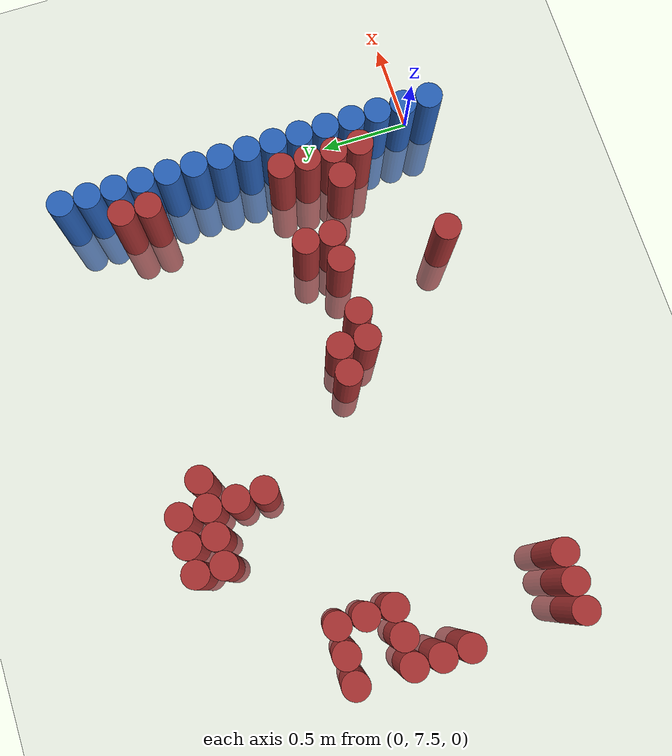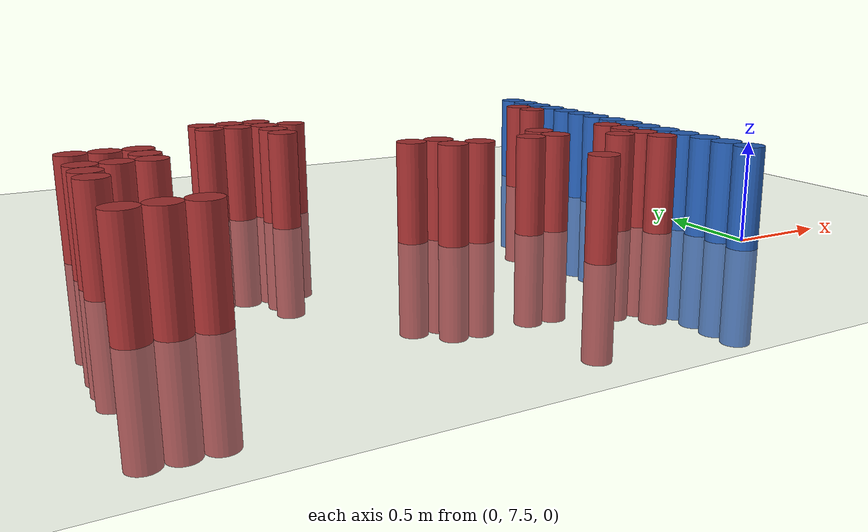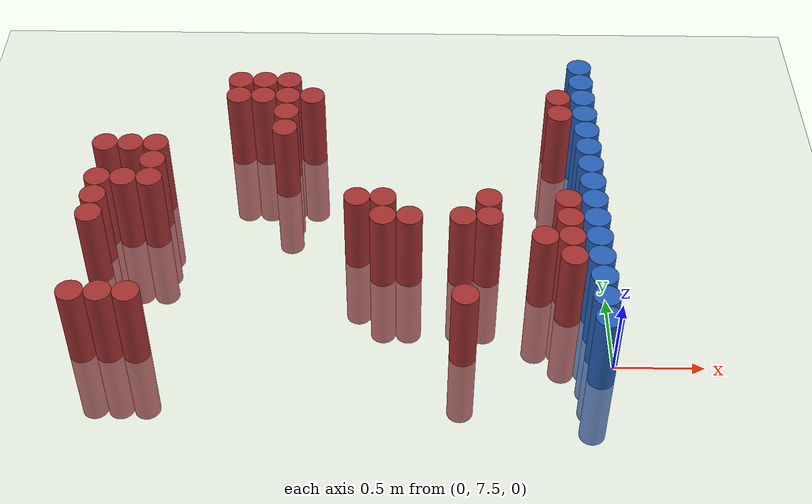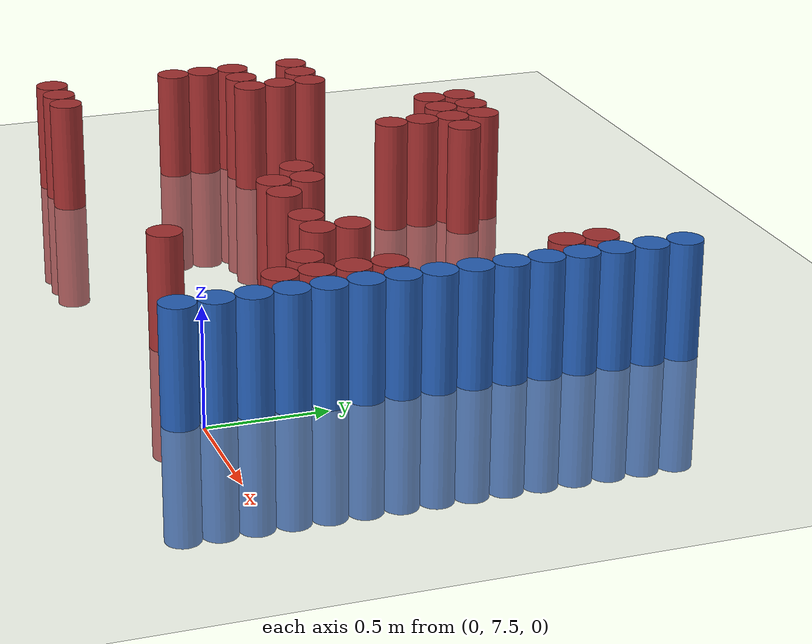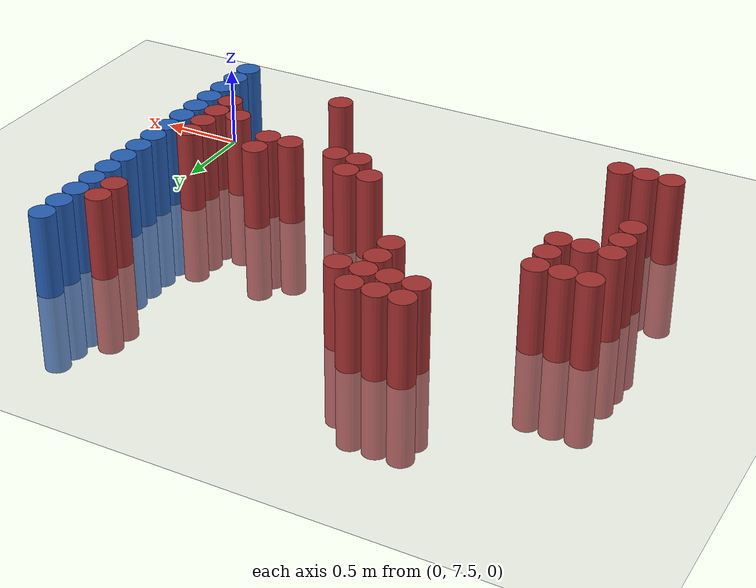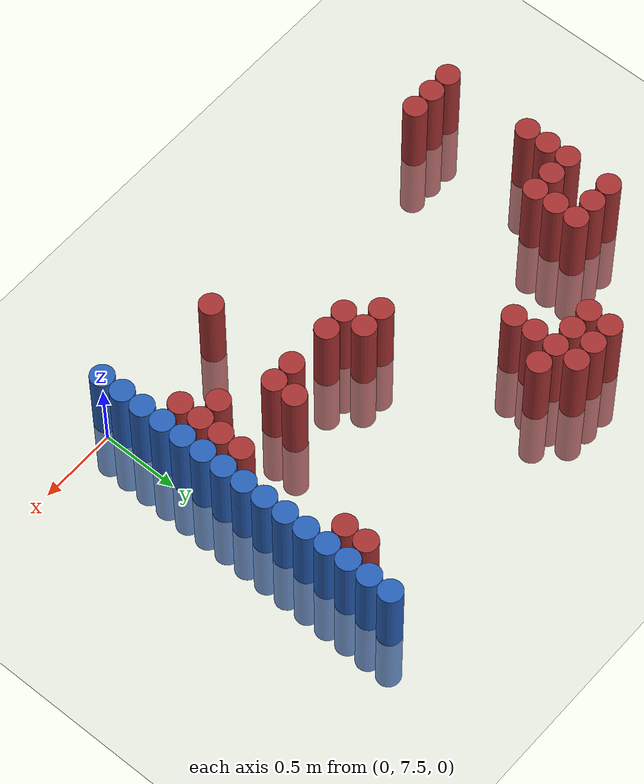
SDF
<sdf version="1.6">
 <world name="default">
  <model name="ground_plane">
   <static>1</static>
   <link name="link">
    <collision name="collision">
     <geometry><plane><normal>0 0 1</normal><size>100 100</size></plane></geometry>
     <surface><friction><ode><mu>100</mu><mu2>50</mu2></ode></friction></surface>
    </collision>
    <visual name="visual">
     <cast_shadows>0</cast_shadows>
     <geometry><plane><normal>0 0 1</normal><size>100 100</size></plane></geometry>
     <material>
      <script><uri>file://media/materials/scripts/gazebo.material</uri><name>Gazebo/Grey</name></script>
     </material>
    </visual>
   </link>
  </model>
  <model name="unit_cylinder_149">
   <static>1</static>
   <pose>-2.925000 7.575000 0.000000 0.000000 0.000000 0.000000</pose>
   <link name="link">
    <inertial>
     <mass>1</mass>
     <inertia><ixx>0.145833</ixx><ixy>0</ixy><ixz>0</ixz><iyy>0.145833</iyy><iyz>0</iyz><izz>0.125</izz></inertia>
    </inertial>
    <collision name="collision">
     <geometry><cylinder><radius>0.075000</radius><length>1</length></cylinder></geometry>
    </collision>
    <visual name="visual">
     <geometry><cylinder><radius>0.075000</radius><length>1</length></cylinder></geometry>
     <material>
      <ambient>0.648000 0.192000 0.192000 1</ambient>
      <diffuse>0.648000 0.192000 0.192000 1</diffuse>
     </material>
     <material>
      <script><name>Gazebo/Grey</name><uri>file://media/materials/scripts/gazebo.material</uri></script>
     </material>
    </visual>
   </link>
  </model>
  <model name="unit_cylinder_150">
   <static>1</static>
   <pose>-2.925000 8.175000 0.000000 0.000000 0.000000 0.000000</pose>
   <link name="link">
    <inertial>
     <mass>1</mass>
     <inertia><ixx>0.145833</ixx><ixy>0</ixy><ixz>0</ixz><iyy>0.145833</iyy><iyz>0</iyz><izz>0.125</izz></inertia>
    </inertial>
    <collision name="collision">
     <geometry><cylinder><radius>0.075000</radius><length>1</length></cylinder></geometry>
    </collision>
    <visual name="visual">
     <geometry><cylinder><radius>0.075000</radius><length>1</length></cylinder></geometry>
     <material>
      <ambient>0.648000 0.192000 0.192000 1</ambient>
      <diffuse>0.648000 0.192000 0.192000 1</diffuse>
     </material>
     <material>
      <script><name>Gazebo/Grey</name><uri>file://media/materials/scripts/gazebo.material</uri></script>
     </material>
    </visual>
   </link>
  </model>
  <model name="unit_cylinder_151">
   <static>1</static>
   <pose>-2.925000 8.325000 0.000000 0.000000 0.000000 0.000000</pose>
   <link name="link">
    <inertial>
     <mass>1</mass>
     <inertia><ixx>0.145833</ixx><ixy>0</ixy><ixz>0</ixz><iyy>0.145833</iyy><iyz>0</iyz><izz>0.125</izz></inertia>
    </inertial>
    <collision name="collision">
     <geometry><cylinder><radius>0.075000</radius><length>1</length></cylinder></geometry>
    </collision>
    <visual name="visual">
     <geometry><cylinder><radius>0.075000</radius><length>1</length></cylinder></geometry>
     <material>
      <ambient>0.648000 0.192000 0.192000 1</ambient>
      <diffuse>0.648000 0.192000 0.192000 1</diffuse>
     </material>
     <material>
      <script><name>Gazebo/Grey</name><uri>file://media/materials/scripts/gazebo.material</uri></script>
     </material>
    </visual>
   </link>
  </model>
  <model name="unit_cylinder_152">
   <static>1</static>
   <pose>-2.925000 8.475000 0.000000 0.000000 0.000000 0.000000</pose>
   <link name="link">
    <inertial>
     <mass>1</mass>
     <inertia><ixx>0.145833</ixx><ixy>0</ixy><ixz>0</ixz><iyy>0.145833</iyy><iyz>0</iyz><izz>0.125</izz></inertia>
    </inertial>
    <collision name="collision">
     <geometry><cylinder><radius>0.075000</radius><length>1</length></cylinder></geometry>
    </collision>
    <visual name="visual">
     <geometry><cylinder><radius>0.075000</radius><length>1</length></cylinder></geometry>
     <material>
      <ambient>0.648000 0.192000 0.192000 1</ambient>
      <diffuse>0.648000 0.192000 0.192000 1</diffuse>
     </material>
     <material>
      <script><name>Gazebo/Grey</name><uri>file://media/materials/scripts/gazebo.material</uri></script>
     </material>
    </visual>
   </link>
  </model>
  <model name="unit_cylinder_153">
   <static>1</static>
   <pose>-2.925000 8.775000 0.000000 0.000000 0.000000 0.000000</pose>
   <link name="link">
    <inertial>
     <mass>1</mass>
     <inertia><ixx>0.145833</ixx><ixy>0</ixy><ixz>0</ixz><iyy>0.145833</iyy><iyz>0</iyz><izz>0.125</izz></inertia>
    </inertial>
    <collision name="collision">
     <geometry><cylinder><radius>0.075000</radius><length>1</length></cylinder></geometry>
    </collision>
    <visual name="visual">
     <geometry><cylinder><radius>0.075000</radius><length>1</length></cylinder></geometry>
     <material>
      <ambient>0.648000 0.192000 0.192000 1</ambient>
      <diffuse>0.648000 0.192000 0.192000 1</diffuse>
     </material>
     <material>
      <script><name>Gazebo/Grey</name><uri>file://media/materials/scripts/gazebo.material</uri></script>
     </material>
    </visual>
   </link>
  </model>
  <model name="unit_cylinder_156">
   <static>1</static>
   <pose>-2.775000 7.575000 0.000000 0.000000 0.000000 0.000000</pose>
   <link name="link">
    <inertial>
     <mass>1</mass>
     <inertia><ixx>0.145833</ixx><ixy>0</ixy><ixz>0</ixz><iyy>0.145833</iyy><iyz>0</iyz><izz>0.125</izz></inertia>
    </inertial>
    <collision name="collision">
     <geometry><cylinder><radius>0.075000</radius><length>1</length></cylinder></geometry>
    </collision>
    <visual name="visual">
     <geometry><cylinder><radius>0.075000</radius><length>1</length></cylinder></geometry>
     <material>
      <ambient>0.648000 0.192000 0.192000 1</ambient>
      <diffuse>0.648000 0.192000 0.192000 1</diffuse>
     </material>
     <material>
      <script><name>Gazebo/Grey</name><uri>file://media/materials/scripts/gazebo.material</uri></script>
     </material>
    </visual>
   </link>
  </model>
  <model name="unit_cylinder_157">
   <static>1</static>
   <pose>-2.775000 8.475000 0.000000 0.000000 0.000000 0.000000</pose>
   <link name="link">
    <inertial>
     <mass>1</mass>
     <inertia><ixx>0.145833</ixx><ixy>0</ixy><ixz>0</ixz><iyy>0.145833</iyy><iyz>0</iyz><izz>0.125</izz></inertia>
    </inertial>
    <collision name="collision">
     <geometry><cylinder><radius>0.075000</radius><length>1</length></cylinder></geometry>
    </collision>
    <visual name="visual">
     <geometry><cylinder><radius>0.075000</radius><length>1</length></cylinder></geometry>
     <material>
      <ambient>0.648000 0.192000 0.192000 1</ambient>
      <diffuse>0.648000 0.192000 0.192000 1</diffuse>
     </material>
     <material>
      <script><name>Gazebo/Grey</name><uri>file://media/materials/scripts/gazebo.material</uri></script>
     </material>
    </visual>
   </link>
  </model>
  <model name="unit_cylinder_158">
   <static>1</static>
   <pose>-2.775000 8.775000 0.000000 0.000000 0.000000 0.000000</pose>
   <link name="link">
    <inertial>
     <mass>1</mass>
     <inertia><ixx>0.145833</ixx><ixy>0</ixy><ixz>0</ixz><iyy>0.145833</iyy><iyz>0</iyz><izz>0.125</izz></inertia>
    </inertial>
    <collision name="collision">
     <geometry><cylinder><radius>0.075000</radius><length>1</length></cylinder></geometry>
    </collision>
    <visual name="visual">
     <geometry><cylinder><radius>0.075000</radius><length>1</length></cylinder></geometry>
     <material>
      <ambient>0.648000 0.192000 0.192000 1</ambient>
      <diffuse>0.648000 0.192000 0.192000 1</diffuse>
     </material>
     <material>
      <script><name>Gazebo/Grey</name><uri>file://media/materials/scripts/gazebo.material</uri></script>
     </material>
    </visual>
   </link>
  </model>
  <model name="unit_cylinder_160">
   <static>1</static>
   <pose>-2.625000 7.575000 0.000000 0.000000 0.000000 0.000000</pose>
   <link name="link">
    <inertial>
     <mass>1</mass>
     <inertia><ixx>0.145833</ixx><ixy>0</ixy><ixz>0</ixz><iyy>0.145833</iyy><iyz>0</iyz><izz>0.125</izz></inertia>
    </inertial>
    <collision name="collision">
     <geometry><cylinder><radius>0.075000</radius><length>1</length></cylinder></geometry>
    </collision>
    <visual name="visual">
     <geometry><cylinder><radius>0.075000</radius><length>1</length></cylinder></geometry>
     <material>
      <ambient>0.648000 0.192000 0.192000 1</ambient>
      <diffuse>0.648000 0.192000 0.192000 1</diffuse>
     </material>
     <material>
      <script><name>Gazebo/Grey</name><uri>file://media/materials/scripts/gazebo.material</uri></script>
     </material>
    </visual>
   </link>
  </model>
  <model name="unit_cylinder_161">
   <static>1</static>
   <pose>-2.625000 8.475000 0.000000 0.000000 0.000000 0.000000</pose>
   <link name="link">
    <inertial>
     <mass>1</mass>
     <inertia><ixx>0.145833</ixx><ixy>0</ixy><ixz>0</ixz><iyy>0.145833</iyy><iyz>0</iyz><izz>0.125</izz></inertia>
    </inertial>
    <collision name="collision">
     <geometry><cylinder><radius>0.075000</radius><length>1</length></cylinder></geometry>
    </collision>
    <visual name="visual">
     <geometry><cylinder><radius>0.075000</radius><length>1</length></cylinder></geometry>
     <material>
      <ambient>0.648000 0.192000 0.192000 1</ambient>
      <diffuse>0.648000 0.192000 0.192000 1</diffuse>
     </material>
     <material>
      <script><name>Gazebo/Grey</name><uri>file://media/materials/scripts/gazebo.material</uri></script>
     </material>
    </visual>
   </link>
  </model>
  <model name="unit_cylinder_162">
   <static>1</static>
   <pose>-2.625000 8.625000 0.000000 0.000000 0.000000 0.000000</pose>
   <link name="link">
    <inertial>
     <mass>1</mass>
     <inertia><ixx>0.145833</ixx><ixy>0</ixy><ixz>0</ixz><iyy>0.145833</iyy><iyz>0</iyz><izz>0.125</izz></inertia>
    </inertial>
    <collision name="collision">
     <geometry><cylinder><radius>0.075000</radius><length>1</length></cylinder></geometry>
    </collision>
    <visual name="visual">
     <geometry><cylinder><radius>0.075000</radius><length>1</length></cylinder></geometry>
     <material>
      <ambient>0.648000 0.192000 0.192000 1</ambient>
      <diffuse>0.648000 0.192000 0.192000 1</diffuse>
     </material>
     <material>
      <script><name>Gazebo/Grey</name><uri>file://media/materials/scripts/gazebo.material</uri></script>
     </material>
    </visual>
   </link>
  </model>
  <model name="unit_cylinder_163">
   <static>1</static>
   <pose>-2.625000 8.775000 0.000000 0.000000 0.000000 0.000000</pose>
   <link name="link">
    <inertial>
     <mass>1</mass>
     <inertia><ixx>0.145833</ixx><ixy>0</ixy><ixz>0</ixz><iyy>0.145833</iyy><iyz>0</iyz><izz>0.125</izz></inertia>
    </inertial>
    <collision name="collision">
     <geometry><cylinder><radius>0.075000</radius><length>1</length></cylinder></geometry>
    </collision>
    <visual name="visual">
     <geometry><cylinder><radius>0.075000</radius><length>1</length></cylinder></geometry>
     <material>
      <ambient>0.648000 0.192000 0.192000 1</ambient>
      <diffuse>0.648000 0.192000 0.192000 1</diffuse>
     </material>
     <material>
      <script><name>Gazebo/Grey</name><uri>file://media/materials/scripts/gazebo.material</uri></script>
     </material>
    </visual>
   </link>
  </model>
  <model name="unit_cylinder_166">
   <static>1</static>
   <pose>-2.175000 9.225000 0.000000 0.000000 0.000000 0.000000</pose>
   <link name="link">
    <inertial>
     <mass>1</mass>
     <inertia><ixx>0.145833</ixx><ixy>0</ixy><ixz>0</ixz><iyy>0.145833</iyy><iyz>0</iyz><izz>0.125</izz></inertia>
    </inertial>
    <collision name="collision">
     <geometry><cylinder><radius>0.075000</radius><length>1</length></cylinder></geometry>
    </collision>
    <visual name="visual">
     <geometry><cylinder><radius>0.075000</radius><length>1</length></cylinder></geometry>
     <material>
      <ambient>0.648000 0.192000 0.192000 1</ambient>
      <diffuse>0.648000 0.192000 0.192000 1</diffuse>
     </material>
     <material>
      <script><name>Gazebo/Grey</name><uri>file://media/materials/scripts/gazebo.material</uri></script>
     </material>
    </visual>
   </link>
  </model>
  <model name="unit_cylinder_167">
   <static>1</static>
   <pose>-2.175000 9.375000 0.000000 0.000000 0.000000 0.000000</pose>
   <link name="link">
    <inertial>
     <mass>1</mass>
     <inertia><ixx>0.145833</ixx><ixy>0</ixy><ixz>0</ixz><iyy>0.145833</iyy><iyz>0</iyz><izz>0.125</izz></inertia>
    </inertial>
    <collision name="collision">
     <geometry><cylinder><radius>0.075000</radius><length>1</length></cylinder></geometry>
    </collision>
    <visual name="visual">
     <geometry><cylinder><radius>0.075000</radius><length>1</length></cylinder></geometry>
     <material>
      <ambient>0.648000 0.192000 0.192000 1</ambient>
      <diffuse>0.648000 0.192000 0.192000 1</diffuse>
     </material>
     <material>
      <script><name>Gazebo/Grey</name><uri>file://media/materials/scripts/gazebo.material</uri></script>
     </material>
    </visual>
   </link>
  </model>
  <model name="unit_cylinder_169">
   <static>1</static>
   <pose>-2.025000 9.225000 0.000000 0.000000 0.000000 0.000000</pose>
   <link name="link">
    <inertial>
     <mass>1</mass>
     <inertia><ixx>0.145833</ixx><ixy>0</ixy><ixz>0</ixz><iyy>0.145833</iyy><iyz>0</iyz><izz>0.125</izz></inertia>
    </inertial>
    <collision name="collision">
     <geometry><cylinder><radius>0.075000</radius><length>1</length></cylinder></geometry>
    </collision>
    <visual name="visual">
     <geometry><cylinder><radius>0.075000</radius><length>1</length></cylinder></geometry>
     <material>
      <ambient>0.648000 0.192000 0.192000 1</ambient>
      <diffuse>0.648000 0.192000 0.192000 1</diffuse>
     </material>
     <material>
      <script><name>Gazebo/Grey</name><uri>file://media/materials/scripts/gazebo.material</uri></script>
     </material>
    </visual>
   </link>
  </model>
  <model name="unit_cylinder_170">
   <static>1</static>
   <pose>-2.025000 9.375000 0.000000 0.000000 0.000000 0.000000</pose>
   <link name="link">
    <inertial>
     <mass>1</mass>
     <inertia><ixx>0.145833</ixx><ixy>0</ixy><ixz>0</ixz><iyy>0.145833</iyy><iyz>0</iyz><izz>0.125</izz></inertia>
    </inertial>
    <collision name="collision">
     <geometry><cylinder><radius>0.075000</radius><length>1</length></cylinder></geometry>
    </collision>
    <visual name="visual">
     <geometry><cylinder><radius>0.075000</radius><length>1</length></cylinder></geometry>
     <material>
      <ambient>0.648000 0.192000 0.192000 1</ambient>
      <diffuse>0.648000 0.192000 0.192000 1</diffuse>
     </material>
     <material>
      <script><name>Gazebo/Grey</name><uri>file://media/materials/scripts/gazebo.material</uri></script>
     </material>
    </visual>
   </link>
  </model>
  <model name="unit_cylinder_172">
   <static>1</static>
   <pose>-1.875000 8.925000 0.000000 0.000000 0.000000 0.000000</pose>
   <link name="link">
    <inertial>
     <mass>1</mass>
     <inertia><ixx>0.145833</ixx><ixy>0</ixy><ixz>0</ixz><iyy>0.145833</iyy><iyz>0</iyz><izz>0.125</izz></inertia>
    </inertial>
    <collision name="collision">
     <geometry><cylinder><radius>0.075000</radius><length>1</length></cylinder></geometry>
    </collision>
    <visual name="visual">
     <geometry><cylinder><radius>0.075000</radius><length>1</length></cylinder></geometry>
     <material>
      <ambient>0.648000 0.192000 0.192000 1</ambient>
      <diffuse>0.648000 0.192000 0.192000 1</diffuse>
     </material>
     <material>
      <script><name>Gazebo/Grey</name><uri>file://media/materials/scripts/gazebo.material</uri></script>
     </material>
    </visual>
   </link>
  </model>
  <model name="unit_cylinder_173">
   <static>1</static>
   <pose>-1.875000 9.075000 0.000000 0.000000 0.000000 0.000000</pose>
   <link name="link">
    <inertial>
     <mass>1</mass>
     <inertia><ixx>0.145833</ixx><ixy>0</ixy><ixz>0</ixz><iyy>0.145833</iyy><iyz>0</iyz><izz>0.125</izz></inertia>
    </inertial>
    <collision name="collision">
     <geometry><cylinder><radius>0.075000</radius><length>1</length></cylinder></geometry>
    </collision>
    <visual name="visual">
     <geometry><cylinder><radius>0.075000</radius><length>1</length></cylinder></geometry>
     <material>
      <ambient>0.648000 0.192000 0.192000 1</ambient>
      <diffuse>0.648000 0.192000 0.192000 1</diffuse>
     </material>
     <material>
      <script><name>Gazebo/Grey</name><uri>file://media/materials/scripts/gazebo.material</uri></script>
     </material>
    </visual>
   </link>
  </model>
  <model name="unit_cylinder_174">
   <static>1</static>
   <pose>-1.875000 9.225000 0.000000 0.000000 0.000000 0.000000</pose>
   <link name="link">
    <inertial>
     <mass>1</mass>
     <inertia><ixx>0.145833</ixx><ixy>0</ixy><ixz>0</ixz><iyy>0.145833</iyy><iyz>0</iyz><izz>0.125</izz></inertia>
    </inertial>
    <collision name="collision">
     <geometry><cylinder><radius>0.075000</radius><length>1</length></cylinder></geometry>
    </collision>
    <visual name="visual">
     <geometry><cylinder><radius>0.075000</radius><length>1</length></cylinder></geometry>
     <material>
      <ambient>0.648000 0.192000 0.192000 1</ambient>
      <diffuse>0.648000 0.192000 0.192000 1</diffuse>
     </material>
     <material>
      <script><name>Gazebo/Grey</name><uri>file://media/materials/scripts/gazebo.material</uri></script>
     </material>
    </visual>
   </link>
  </model>
  <model name="unit_cylinder_175">
   <static>1</static>
   <pose>-1.875000 9.375000 0.000000 0.000000 0.000000 0.000000</pose>
   <link name="link">
    <inertial>
     <mass>1</mass>
     <inertia><ixx>0.145833</ixx><ixy>0</ixy><ixz>0</ixz><iyy>0.145833</iyy><iyz>0</iyz><izz>0.125</izz></inertia>
    </inertial>
    <collision name="collision">
     <geometry><cylinder><radius>0.075000</radius><length>1</length></cylinder></geometry>
    </collision>
    <visual name="visual">
     <geometry><cylinder><radius>0.075000</radius><length>1</length></cylinder></geometry>
     <material>
      <ambient>0.648000 0.192000 0.192000 1</ambient>
      <diffuse>0.648000 0.192000 0.192000 1</diffuse>
     </material>
     <material>
      <script><name>Gazebo/Grey</name><uri>file://media/materials/scripts/gazebo.material</uri></script>
     </material>
    </visual>
   </link>
  </model>
  <model name="unit_cylinder_178">
   <static>1</static>
   <pose>-1.725000 9.225000 0.000000 0.000000 0.000000 0.000000</pose>
   <link name="link">
    <inertial>
     <mass>1</mass>
     <inertia><ixx>0.145833</ixx><ixy>0</ixy><ixz>0</ixz><iyy>0.145833</iyy><iyz>0</iyz><izz>0.125</izz></inertia>
    </inertial>
    <collision name="collision">
     <geometry><cylinder><radius>0.075000</radius><length>1</length></cylinder></geometry>
    </collision>
    <visual name="visual">
     <geometry><cylinder><radius>0.075000</radius><length>1</length></cylinder></geometry>
     <material>
      <ambient>0.648000 0.192000 0.192000 1</ambient>
      <diffuse>0.648000 0.192000 0.192000 1</diffuse>
     </material>
     <material>
      <script><name>Gazebo/Grey</name><uri>file://media/materials/scripts/gazebo.material</uri></script>
     </material>
    </visual>
   </link>
  </model>
  <model name="unit_cylinder_179">
   <static>1</static>
   <pose>-1.425000 8.325000 0.000000 0.000000 0.000000 0.000000</pose>
   <link name="link">
    <inertial>
     <mass>1</mass>
     <inertia><ixx>0.145833</ixx><ixy>0</ixy><ixz>0</ixz><iyy>0.145833</iyy><iyz>0</iyz><izz>0.125</izz></inertia>
    </inertial>
    <collision name="collision">
     <geometry><cylinder><radius>0.075000</radius><length>1</length></cylinder></geometry>
    </collision>
    <visual name="visual">
     <geometry><cylinder><radius>0.075000</radius><length>1</length></cylinder></geometry>
     <material>
      <ambient>0.648000 0.192000 0.192000 1</ambient>
      <diffuse>0.648000 0.192000 0.192000 1</diffuse>
     </material>
     <material>
      <script><name>Gazebo/Grey</name><uri>file://media/materials/scripts/gazebo.material</uri></script>
     </material>
    </visual>
   </link>
  </model>
  <model name="unit_cylinder_180">
   <static>1</static>
   <pose>-1.275000 8.175000 0.000000 0.000000 0.000000 0.000000</pose>
   <link name="link">
    <inertial>
     <mass>1</mass>
     <inertia><ixx>0.145833</ixx><ixy>0</ixy><ixz>0</ixz><iyy>0.145833</iyy><iyz>0</iyz><izz>0.125</izz></inertia>
    </inertial>
    <collision name="collision">
     <geometry><cylinder><radius>0.075000</radius><length>1</length></cylinder></geometry>
    </collision>
    <visual name="visual">
     <geometry><cylinder><radius>0.075000</radius><length>1</length></cylinder></geometry>
     <material>
      <ambient>0.648000 0.192000 0.192000 1</ambient>
      <diffuse>0.648000 0.192000 0.192000 1</diffuse>
     </material>
     <material>
      <script><name>Gazebo/Grey</name><uri>file://media/materials/scripts/gazebo.material</uri></script>
     </material>
    </visual>
   </link>
  </model>
  <model name="unit_cylinder_181">
   <static>1</static>
   <pose>-1.275000 8.325000 0.000000 0.000000 0.000000 0.000000</pose>
   <link name="link">
    <inertial>
     <mass>1</mass>
     <inertia><ixx>0.145833</ixx><ixy>0</ixy><ixz>0</ixz><iyy>0.145833</iyy><iyz>0</iyz><izz>0.125</izz></inertia>
    </inertial>
    <collision name="collision">
     <geometry><cylinder><radius>0.075000</radius><length>1</length></cylinder></geometry>
    </collision>
    <visual name="visual">
     <geometry><cylinder><radius>0.075000</radius><length>1</length></cylinder></geometry>
     <material>
      <ambient>0.648000 0.192000 0.192000 1</ambient>
      <diffuse>0.648000 0.192000 0.192000 1</diffuse>
     </material>
     <material>
      <script><name>Gazebo/Grey</name><uri>file://media/materials/scripts/gazebo.material</uri></script>
     </material>
    </visual>
   </link>
  </model>
  <model name="unit_cylinder_182">
   <static>1</static>
   <pose>-1.125000 8.175000 0.000000 0.000000 0.000000 0.000000</pose>
   <link name="link">
    <inertial>
     <mass>1</mass>
     <inertia><ixx>0.145833</ixx><ixy>0</ixy><ixz>0</ixz><iyy>0.145833</iyy><iyz>0</iyz><izz>0.125</izz></inertia>
    </inertial>
    <collision name="collision">
     <geometry><cylinder><radius>0.075000</radius><length>1</length></cylinder></geometry>
    </collision>
    <visual name="visual">
     <geometry><cylinder><radius>0.075000</radius><length>1</length></cylinder></geometry>
     <material>
      <ambient>0.648000 0.192000 0.192000 1</ambient>
      <diffuse>0.648000 0.192000 0.192000 1</diffuse>
     </material>
     <material>
      <script><name>Gazebo/Grey</name><uri>file://media/materials/scripts/gazebo.material</uri></script>
     </material>
    </visual>
   </link>
  </model>
  <model name="unit_cylinder_186">
   <static>1</static>
   <pose>-0.825000 7.575000 0.000000 0.000000 0.000000 0.000000</pose>
   <link name="link">
    <inertial>
     <mass>1</mass>
     <inertia><ixx>0.145833</ixx><ixy>0</ixy><ixz>0</ixz><iyy>0.145833</iyy><iyz>0</iyz><izz>0.125</izz></inertia>
    </inertial>
    <collision name="collision">
     <geometry><cylinder><radius>0.075000</radius><length>1</length></cylinder></geometry>
    </collision>
    <visual name="visual">
     <geometry><cylinder><radius>0.075000</radius><length>1</length></cylinder></geometry>
     <material>
      <ambient>0.648000 0.192000 0.192000 1</ambient>
      <diffuse>0.648000 0.192000 0.192000 1</diffuse>
     </material>
     <material>
      <script><name>Gazebo/Grey</name><uri>file://media/materials/scripts/gazebo.material</uri></script>
     </material>
    </visual>
   </link>
  </model>
  <model name="unit_cylinder_187">
   <static>1</static>
   <pose>-0.825000 8.175000 0.000000 0.000000 0.000000 0.000000</pose>
   <link name="link">
    <inertial>
     <mass>1</mass>
     <inertia><ixx>0.145833</ixx><ixy>0</ixy><ixz>0</ixz><iyy>0.145833</iyy><iyz>0</iyz><izz>0.125</izz></inertia>
    </inertial>
    <collision name="collision">
     <geometry><cylinder><radius>0.075000</radius><length>1</length></cylinder></geometry>
    </collision>
    <visual name="visual">
     <geometry><cylinder><radius>0.075000</radius><length>1</length></cylinder></geometry>
     <material>
      <ambient>0.648000 0.192000 0.192000 1</ambient>
      <diffuse>0.648000 0.192000 0.192000 1</diffuse>
     </material>
     <material>
      <script><name>Gazebo/Grey</name><uri>file://media/materials/scripts/gazebo.material</uri></script>
     </material>
    </visual>
   </link>
  </model>
  <model name="unit_cylinder_192">
   <static>1</static>
   <pose>-0.675000 8.175000 0.000000 0.000000 0.000000 0.000000</pose>
   <link name="link">
    <inertial>
     <mass>1</mass>
     <inertia><ixx>0.145833</ixx><ixy>0</ixy><ixz>0</ixz><iyy>0.145833</iyy><iyz>0</iyz><izz>0.125</izz></inertia>
    </inertial>
    <collision name="collision">
     <geometry><cylinder><radius>0.075000</radius><length>1</length></cylinder></geometry>
    </collision>
    <visual name="visual">
     <geometry><cylinder><radius>0.075000</radius><length>1</length></cylinder></geometry>
     <material>
      <ambient>0.648000 0.192000 0.192000 1</ambient>
      <diffuse>0.648000 0.192000 0.192000 1</diffuse>
     </material>
     <material>
      <script><name>Gazebo/Grey</name><uri>file://media/materials/scripts/gazebo.material</uri></script>
     </material>
    </visual>
   </link>
  </model>
  <model name="unit_cylinder_193">
   <static>1</static>
   <pose>-0.675000 8.325000 0.000000 0.000000 0.000000 0.000000</pose>
   <link name="link">
    <inertial>
     <mass>1</mass>
     <inertia><ixx>0.145833</ixx><ixy>0</ixy><ixz>0</ixz><iyy>0.145833</iyy><iyz>0</iyz><izz>0.125</izz></inertia>
    </inertial>
    <collision name="collision">
     <geometry><cylinder><radius>0.075000</radius><length>1</length></cylinder></geometry>
    </collision>
    <visual name="visual">
     <geometry><cylinder><radius>0.075000</radius><length>1</length></cylinder></geometry>
     <material>
      <ambient>0.648000 0.192000 0.192000 1</ambient>
      <diffuse>0.648000 0.192000 0.192000 1</diffuse>
     </material>
     <material>
      <script><name>Gazebo/Grey</name><uri>file://media/materials/scripts/gazebo.material</uri></script>
     </material>
    </visual>
   </link>
  </model>
  <model name="unit_cylinder_207">
   <static>1</static>
   <pose>-0.375000 8.025000 0.000000 0.000000 0.000000 0.000000</pose>
   <link name="link">
    <inertial>
     <mass>1</mass>
     <inertia><ixx>0.145833</ixx><ixy>0</ixy><ixz>0</ixz><iyy>0.145833</iyy><iyz>0</iyz><izz>0.125</izz></inertia>
    </inertial>
    <collision name="collision">
     <geometry><cylinder><radius>0.075000</radius><length>1</length></cylinder></geometry>
    </collision>
    <visual name="visual">
     <geometry><cylinder><radius>0.075000</radius><length>1</length></cylinder></geometry>
     <material>
      <ambient>0.648000 0.192000 0.192000 1</ambient>
      <diffuse>0.648000 0.192000 0.192000 1</diffuse>
     </material>
     <material>
      <script><name>Gazebo/Grey</name><uri>file://media/materials/scripts/gazebo.material</uri></script>
     </material>
    </visual>
   </link>
  </model>
  <model name="unit_cylinder_218">
   <static>1</static>
   <pose>-0.225000 7.875000 0.000000 0.000000 0.000000 0.000000</pose>
   <link name="link">
    <inertial>
     <mass>1</mass>
     <inertia><ixx>0.145833</ixx><ixy>0</ixy><ixz>0</ixz><iyy>0.145833</iyy><iyz>0</iyz><izz>0.125</izz></inertia>
    </inertial>
    <collision name="collision">
     <geometry><cylinder><radius>0.075000</radius><length>1</length></cylinder></geometry>
    </collision>
    <visual name="visual">
     <geometry><cylinder><radius>0.075000</radius><length>1</length></cylinder></geometry>
     <material>
      <ambient>0.648000 0.192000 0.192000 1</ambient>
      <diffuse>0.648000 0.192000 0.192000 1</diffuse>
     </material>
     <material>
      <script><name>Gazebo/Grey</name><uri>file://media/materials/scripts/gazebo.material</uri></script>
     </material>
    </visual>
   </link>
  </model>
  <model name="unit_cylinder_219">
   <static>1</static>
   <pose>-0.225000 8.025000 0.000000 0.000000 0.000000 0.000000</pose>
   <link name="link">
    <inertial>
     <mass>1</mass>
     <inertia><ixx>0.145833</ixx><ixy>0</ixy><ixz>0</ixz><iyy>0.145833</iyy><iyz>0</iyz><izz>0.125</izz></inertia>
    </inertial>
    <collision name="collision">
     <geometry><cylinder><radius>0.075000</radius><length>1</length></cylinder></geometry>
    </collision>
    <visual name="visual">
     <geometry><cylinder><radius>0.075000</radius><length>1</length></cylinder></geometry>
     <material>
      <ambient>0.648000 0.192000 0.192000 1</ambient>
      <diffuse>0.648000 0.192000 0.192000 1</diffuse>
     </material>
     <material>
      <script><name>Gazebo/Grey</name><uri>file://media/materials/scripts/gazebo.material</uri></script>
     </material>
    </visual>
   </link>
  </model>
  <model name="unit_cylinder_220">
   <static>1</static>
   <pose>-0.225000 8.175000 0.000000 0.000000 0.000000 0.000000</pose>
   <link name="link">
    <inertial>
     <mass>1</mass>
     <inertia><ixx>0.145833</ixx><ixy>0</ixy><ixz>0</ixz><iyy>0.145833</iyy><iyz>0</iyz><izz>0.125</izz></inertia>
    </inertial>
    <collision name="collision">
     <geometry><cylinder><radius>0.075000</radius><length>1</length></cylinder></geometry>
    </collision>
    <visual name="visual">
     <geometry><cylinder><radius>0.075000</radius><length>1</length></cylinder></geometry>
     <material>
      <ambient>0.648000 0.192000 0.192000 1</ambient>
      <diffuse>0.648000 0.192000 0.192000 1</diffuse>
     </material>
     <material>
      <script><name>Gazebo/Grey</name><uri>file://media/materials/scripts/gazebo.material</uri></script>
     </material>
    </visual>
   </link>
  </model>
  <model name="unit_cylinder_221">
   <static>1</static>
   <pose>-0.225000 8.325000 0.000000 0.000000 0.000000 0.000000</pose>
   <link name="link">
    <inertial>
     <mass>1</mass>
     <inertia><ixx>0.145833</ixx><ixy>0</ixy><ixz>0</ixz><iyy>0.145833</iyy><iyz>0</iyz><izz>0.125</izz></inertia>
    </inertial>
    <collision name="collision">
     <geometry><cylinder><radius>0.075000</radius><length>1</length></cylinder></geometry>
    </collision>
    <visual name="visual">
     <geometry><cylinder><radius>0.075000</radius><length>1</length></cylinder></geometry>
     <material>
      <ambient>0.648000 0.192000 0.192000 1</ambient>
      <diffuse>0.648000 0.192000 0.192000 1</diffuse>
     </material>
     <material>
      <script><name>Gazebo/Grey</name><uri>file://media/materials/scripts/gazebo.material</uri></script>
     </material>
    </visual>
   </link>
  </model>
  <model name="unit_cylinder_222">
   <static>1</static>
   <pose>-0.225000 9.075000 0.000000 0.000000 0.000000 0.000000</pose>
   <link name="link">
    <inertial>
     <mass>1</mass>
     <inertia><ixx>0.145833</ixx><ixy>0</ixy><ixz>0</ixz><iyy>0.145833</iyy><iyz>0</iyz><izz>0.125</izz></inertia>
    </inertial>
    <collision name="collision">
     <geometry><cylinder><radius>0.075000</radius><length>1</length></cylinder></geometry>
    </collision>
    <visual name="visual">
     <geometry><cylinder><radius>0.075000</radius><length>1</length></cylinder></geometry>
     <material>
      <ambient>0.648000 0.192000 0.192000 1</ambient>
      <diffuse>0.648000 0.192000 0.192000 1</diffuse>
     </material>
     <material>
      <script><name>Gazebo/Grey</name><uri>file://media/materials/scripts/gazebo.material</uri></script>
     </material>
    </visual>
   </link>
  </model>
  <model name="unit_cylinder_223">
   <static>1</static>
   <pose>-0.225000 9.225000 0.000000 0.000000 0.000000 0.000000</pose>
   <link name="link">
    <inertial>
     <mass>1</mass>
     <inertia><ixx>0.145833</ixx><ixy>0</ixy><ixz>0</ixz><iyy>0.145833</iyy><iyz>0</iyz><izz>0.125</izz></inertia>
    </inertial>
    <collision name="collision">
     <geometry><cylinder><radius>0.075000</radius><length>1</length></cylinder></geometry>
    </collision>
    <visual name="visual">
     <geometry><cylinder><radius>0.075000</radius><length>1</length></cylinder></geometry>
     <material>
      <ambient>0.648000 0.192000 0.192000 1</ambient>
      <diffuse>0.648000 0.192000 0.192000 1</diffuse>
     </material>
     <material>
      <script><name>Gazebo/Grey</name><uri>file://media/materials/scripts/gazebo.material</uri></script>
     </material>
    </visual>
   </link>
  </model>
  <model name="unit_cylinder_239">
   <static>1</static>
   <pose>-0.075000 7.425000 0.000000 0.000000 0.000000 0.000000</pose>
   <link name="link">
    <inertial>
     <mass>1</mass>
     <inertia><ixx>0.145833</ixx><ixy>0</ixy><ixz>0</ixz><iyy>0.145833</iyy><iyz>0</iyz><izz>0.125</izz></inertia>
    </inertial>
    <collision name="collision">
     <geometry><cylinder><radius>0.075000</radius><length>1</length></cylinder></geometry>
    </collision>
    <visual name="visual">
     <geometry><cylinder><radius>0.075000</radius><length>1</length></cylinder></geometry>
     <material>
      <ambient>0.152000 0.379000 0.720000 1</ambient>
      <diffuse>0.152000 0.379000 0.720000 1</diffuse>
     </material>
     <material>
      <script><name>Gazebo/Grey</name><uri>file://media/materials/scripts/gazebo.material</uri></script>
     </material>
    </visual>
   </link>
  </model>
  <model name="unit_cylinder_240">
   <static>1</static>
   <pose>-0.075000 7.575000 0.000000 0.000000 0.000000 0.000000</pose>
   <link name="link">
    <inertial>
     <mass>1</mass>
     <inertia><ixx>0.145833</ixx><ixy>0</ixy><ixz>0</ixz><iyy>0.145833</iyy><iyz>0</iyz><izz>0.125</izz></inertia>
    </inertial>
    <collision name="collision">
     <geometry><cylinder><radius>0.075000</radius><length>1</length></cylinder></geometry>
    </collision>
    <visual name="visual">
     <geometry><cylinder><radius>0.075000</radius><length>1</length></cylinder></geometry>
     <material>
      <ambient>0.152000 0.379000 0.720000 1</ambient>
      <diffuse>0.152000 0.379000 0.720000 1</diffuse>
     </material>
     <material>
      <script><name>Gazebo/Grey</name><uri>file://media/materials/scripts/gazebo.material</uri></script>
     </material>
    </visual>
   </link>
  </model>
  <model name="unit_cylinder_241">
   <static>1</static>
   <pose>-0.075000 7.725000 0.000000 0.000000 0.000000 0.000000</pose>
   <link name="link">
    <inertial>
     <mass>1</mass>
     <inertia><ixx>0.145833</ixx><ixy>0</ixy><ixz>0</ixz><iyy>0.145833</iyy><iyz>0</iyz><izz>0.125</izz></inertia>
    </inertial>
    <collision name="collision">
     <geometry><cylinder><radius>0.075000</radius><length>1</length></cylinder></geometry>
    </collision>
    <visual name="visual">
     <geometry><cylinder><radius>0.075000</radius><length>1</length></cylinder></geometry>
     <material>
      <ambient>0.152000 0.379000 0.720000 1</ambient>
      <diffuse>0.152000 0.379000 0.720000 1</diffuse>
     </material>
     <material>
      <script><name>Gazebo/Grey</name><uri>file://media/materials/scripts/gazebo.material</uri></script>
     </material>
    </visual>
   </link>
  </model>
  <model name="unit_cylinder_242">
   <static>1</static>
   <pose>-0.075000 7.875000 0.000000 0.000000 0.000000 0.000000</pose>
   <link name="link">
    <inertial>
     <mass>1</mass>
     <inertia><ixx>0.145833</ixx><ixy>0</ixy><ixz>0</ixz><iyy>0.145833</iyy><iyz>0</iyz><izz>0.125</izz></inertia>
    </inertial>
    <collision name="collision">
     <geometry><cylinder><radius>0.075000</radius><length>1</length></cylinder></geometry>
    </collision>
    <visual name="visual">
     <geometry><cylinder><radius>0.075000</radius><length>1</length></cylinder></geometry>
     <material>
      <ambient>0.152000 0.379000 0.720000 1</ambient>
      <diffuse>0.152000 0.379000 0.720000 1</diffuse>
     </material>
     <material>
      <script><name>Gazebo/Grey</name><uri>file://media/materials/scripts/gazebo.material</uri></script>
     </material>
    </visual>
   </link>
  </model>
  <model name="unit_cylinder_243">
   <static>1</static>
   <pose>-0.075000 8.025000 0.000000 0.000000 0.000000 0.000000</pose>
   <link name="link">
    <inertial>
     <mass>1</mass>
     <inertia><ixx>0.145833</ixx><ixy>0</ixy><ixz>0</ixz><iyy>0.145833</iyy><iyz>0</iyz><izz>0.125</izz></inertia>
    </inertial>
    <collision name="collision">
     <geometry><cylinder><radius>0.075000</radius><length>1</length></cylinder></geometry>
    </collision>
    <visual name="visual">
     <geometry><cylinder><radius>0.075000</radius><length>1</length></cylinder></geometry>
     <material>
      <ambient>0.152000 0.379000 0.720000 1</ambient>
      <diffuse>0.152000 0.379000 0.720000 1</diffuse>
     </material>
     <material>
      <script><name>Gazebo/Grey</name><uri>file://media/materials/scripts/gazebo.material</uri></script>
     </material>
    </visual>
   </link>
  </model>
  <model name="unit_cylinder_244">
   <static>1</static>
   <pose>-0.075000 8.175000 0.000000 0.000000 0.000000 0.000000</pose>
   <link name="link">
    <inertial>
     <mass>1</mass>
     <inertia><ixx>0.145833</ixx><ixy>0</ixy><ixz>0</ixz><iyy>0.145833</iyy><iyz>0</iyz><izz>0.125</izz></inertia>
    </inertial>
    <collision name="collision">
     <geometry><cylinder><radius>0.075000</radius><length>1</length></cylinder></geometry>
    </collision>
    <visual name="visual">
     <geometry><cylinder><radius>0.075000</radius><length>1</length></cylinder></geometry>
     <material>
      <ambient>0.152000 0.379000 0.720000 1</ambient>
      <diffuse>0.152000 0.379000 0.720000 1</diffuse>
     </material>
     <material>
      <script><name>Gazebo/Grey</name><uri>file://media/materials/scripts/gazebo.material</uri></script>
     </material>
    </visual>
   </link>
  </model>
  <model name="unit_cylinder_245">
   <static>1</static>
   <pose>-0.075000 8.325000 0.000000 0.000000 0.000000 0.000000</pose>
   <link name="link">
    <inertial>
     <mass>1</mass>
     <inertia><ixx>0.145833</ixx><ixy>0</ixy><ixz>0</ixz><iyy>0.145833</iyy><iyz>0</iyz><izz>0.125</izz></inertia>
    </inertial>
    <collision name="collision">
     <geometry><cylinder><radius>0.075000</radius><length>1</length></cylinder></geometry>
    </collision>
    <visual name="visual">
     <geometry><cylinder><radius>0.075000</radius><length>1</length></cylinder></geometry>
     <material>
      <ambient>0.152000 0.379000 0.720000 1</ambient>
      <diffuse>0.152000 0.379000 0.720000 1</diffuse>
     </material>
     <material>
      <script><name>Gazebo/Grey</name><uri>file://media/materials/scripts/gazebo.material</uri></script>
     </material>
    </visual>
   </link>
  </model>
  <model name="unit_cylinder_246">
   <static>1</static>
   <pose>-0.075000 8.475000 0.000000 0.000000 0.000000 0.000000</pose>
   <link name="link">
    <inertial>
     <mass>1</mass>
     <inertia><ixx>0.145833</ixx><ixy>0</ixy><ixz>0</ixz><iyy>0.145833</iyy><iyz>0</iyz><izz>0.125</izz></inertia>
    </inertial>
    <collision name="collision">
     <geometry><cylinder><radius>0.075000</radius><length>1</length></cylinder></geometry>
    </collision>
    <visual name="visual">
     <geometry><cylinder><radius>0.075000</radius><length>1</length></cylinder></geometry>
     <material>
      <ambient>0.152000 0.379000 0.720000 1</ambient>
      <diffuse>0.152000 0.379000 0.720000 1</diffuse>
     </material>
     <material>
      <script><name>Gazebo/Grey</name><uri>file://media/materials/scripts/gazebo.material</uri></script>
     </material>
    </visual>
   </link>
  </model>
  <model name="unit_cylinder_247">
   <static>1</static>
   <pose>-0.075000 8.625000 0.000000 0.000000 0.000000 0.000000</pose>
   <link name="link">
    <inertial>
     <mass>1</mass>
     <inertia><ixx>0.145833</ixx><ixy>0</ixy><ixz>0</ixz><iyy>0.145833</iyy><iyz>0</iyz><izz>0.125</izz></inertia>
    </inertial>
    <collision name="collision">
     <geometry><cylinder><radius>0.075000</radius><length>1</length></cylinder></geometry>
    </collision>
    <visual name="visual">
     <geometry><cylinder><radius>0.075000</radius><length>1</length></cylinder></geometry>
     <material>
      <ambient>0.152000 0.379000 0.720000 1</ambient>
      <diffuse>0.152000 0.379000 0.720000 1</diffuse>
     </material>
     <material>
      <script><name>Gazebo/Grey</name><uri>file://media/materials/scripts/gazebo.material</uri></script>
     </material>
    </visual>
   </link>
  </model>
  <model name="unit_cylinder_248">
   <static>1</static>
   <pose>-0.075000 8.775000 0.000000 0.000000 0.000000 0.000000</pose>
   <link name="link">
    <inertial>
     <mass>1</mass>
     <inertia><ixx>0.145833</ixx><ixy>0</ixy><ixz>0</ixz><iyy>0.145833</iyy><iyz>0</iyz><izz>0.125</izz></inertia>
    </inertial>
    <collision name="collision">
     <geometry><cylinder><radius>0.075000</radius><length>1</length></cylinder></geometry>
    </collision>
    <visual name="visual">
     <geometry><cylinder><radius>0.075000</radius><length>1</length></cylinder></geometry>
     <material>
      <ambient>0.152000 0.379000 0.720000 1</ambient>
      <diffuse>0.152000 0.379000 0.720000 1</diffuse>
     </material>
     <material>
      <script><name>Gazebo/Grey</name><uri>file://media/materials/scripts/gazebo.material</uri></script>
     </material>
    </visual>
   </link>
  </model>
  <model name="unit_cylinder_249">
   <static>1</static>
   <pose>-0.075000 8.925000 0.000000 0.000000 0.000000 0.000000</pose>
   <link name="link">
    <inertial>
     <mass>1</mass>
     <inertia><ixx>0.145833</ixx><ixy>0</ixy><ixz>0</ixz><iyy>0.145833</iyy><iyz>0</iyz><izz>0.125</izz></inertia>
    </inertial>
    <collision name="collision">
     <geometry><cylinder><radius>0.075000</radius><length>1</length></cylinder></geometry>
    </collision>
    <visual name="visual">
     <geometry><cylinder><radius>0.075000</radius><length>1</length></cylinder></geometry>
     <material>
      <ambient>0.152000 0.379000 0.720000 1</ambient>
      <diffuse>0.152000 0.379000 0.720000 1</diffuse>
     </material>
     <material>
      <script><name>Gazebo/Grey</name><uri>file://media/materials/scripts/gazebo.material</uri></script>
     </material>
    </visual>
   </link>
  </model>
  <model name="unit_cylinder_250">
   <static>1</static>
   <pose>-0.075000 9.075000 0.000000 0.000000 0.000000 0.000000</pose>
   <link name="link">
    <inertial>
     <mass>1</mass>
     <inertia><ixx>0.145833</ixx><ixy>0</ixy><ixz>0</ixz><iyy>0.145833</iyy><iyz>0</iyz><izz>0.125</izz></inertia>
    </inertial>
    <collision name="collision">
     <geometry><cylinder><radius>0.075000</radius><length>1</length></cylinder></geometry>
    </collision>
    <visual name="visual">
     <geometry><cylinder><radius>0.075000</radius><length>1</length></cylinder></geometry>
     <material>
      <ambient>0.152000 0.379000 0.720000 1</ambient>
      <diffuse>0.152000 0.379000 0.720000 1</diffuse>
     </material>
     <material>
      <script><name>Gazebo/Grey</name><uri>file://media/materials/scripts/gazebo.material</uri></script>
     </material>
    </visual>
   </link>
  </model>
  <model name="unit_cylinder_251">
   <static>1</static>
   <pose>-0.075000 9.225000 0.000000 0.000000 0.000000 0.000000</pose>
   <link name="link">
    <inertial>
     <mass>1</mass>
     <inertia><ixx>0.145833</ixx><ixy>0</ixy><ixz>0</ixz><iyy>0.145833</iyy><iyz>0</iyz><izz>0.125</izz></inertia>
    </inertial>
    <collision name="collision">
     <geometry><cylinder><radius>0.075000</radius><length>1</length></cylinder></geometry>
    </collision>
    <visual name="visual">
     <geometry><cylinder><radius>0.075000</radius><length>1</length></cylinder></geometry>
     <material>
      <ambient>0.152000 0.379000 0.720000 1</ambient>
      <diffuse>0.152000 0.379000 0.720000 1</diffuse>
     </material>
     <material>
      <script><name>Gazebo/Grey</name><uri>file://media/materials/scripts/gazebo.material</uri></script>
     </material>
    </visual>
   </link>
  </model>
  <model name="unit_cylinder_252">
   <static>1</static>
   <pose>-0.075000 9.375000 0.000000 0.000000 0.000000 0.000000</pose>
   <link name="link">
    <inertial>
     <mass>1</mass>
     <inertia><ixx>0.145833</ixx><ixy>0</ixy><ixz>0</ixz><iyy>0.145833</iyy><iyz>0</iyz><izz>0.125</izz></inertia>
    </inertial>
    <collision name="collision">
     <geometry><cylinder><radius>0.075000</radius><length>1</length></cylinder></geometry>
    </collision>
    <visual name="visual">
     <geometry><cylinder><radius>0.075000</radius><length>1</length></cylinder></geometry>
     <material>
      <ambient>0.152000 0.379000 0.720000 1</ambient>
      <diffuse>0.152000 0.379000 0.720000 1</diffuse>
     </material>
     <material>
      <script><name>Gazebo/Grey</name><uri>file://media/materials/scripts/gazebo.material</uri></script>
     </material>
    </visual>
   </link>
  </model>
  <model name="unit_cylinder_253">
   <static>1</static>
   <pose>-0.075000 9.525000 0.000000 0.000000 0.000000 0.000000</pose>
   <link name="link">
    <inertial>
     <mass>1</mass>
     <inertia><ixx>0.145833</ixx><ixy>0</ixy><ixz>0</ixz><iyy>0.145833</iyy><iyz>0</iyz><izz>0.125</izz></inertia>
    </inertial>
    <collision name="collision">
     <geometry><cylinder><radius>0.075000</radius><length>1</length></cylinder></geometry>
    </collision>
    <visual name="visual">
     <geometry><cylinder><radius>0.075000</radius><length>1</length></cylinder></geometry>
     <material>
      <ambient>0.152000 0.379000 0.720000 1</ambient>
      <diffuse>0.152000 0.379000 0.720000 1</diffuse>
     </material>
     <material>
      <script><name>Gazebo/Grey</name><uri>file://media/materials/scripts/gazebo.material</uri></script>
     </material>
    </visual>
   </link>
  </model>
 </world>
</sdf>
